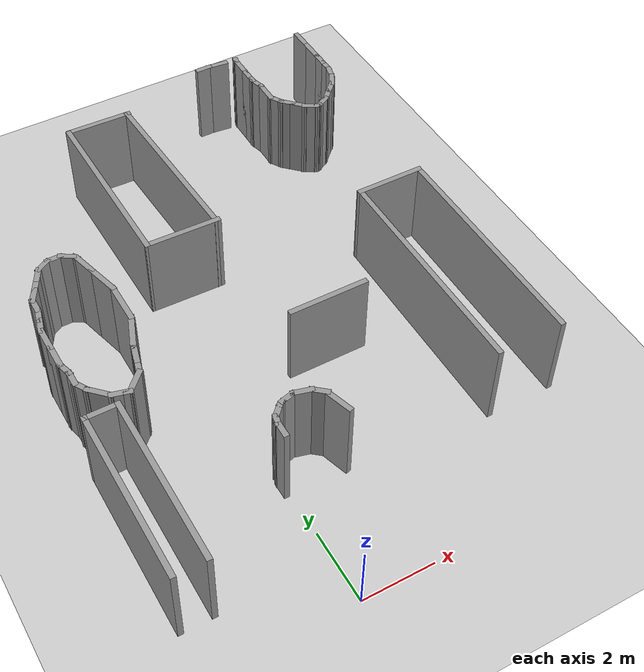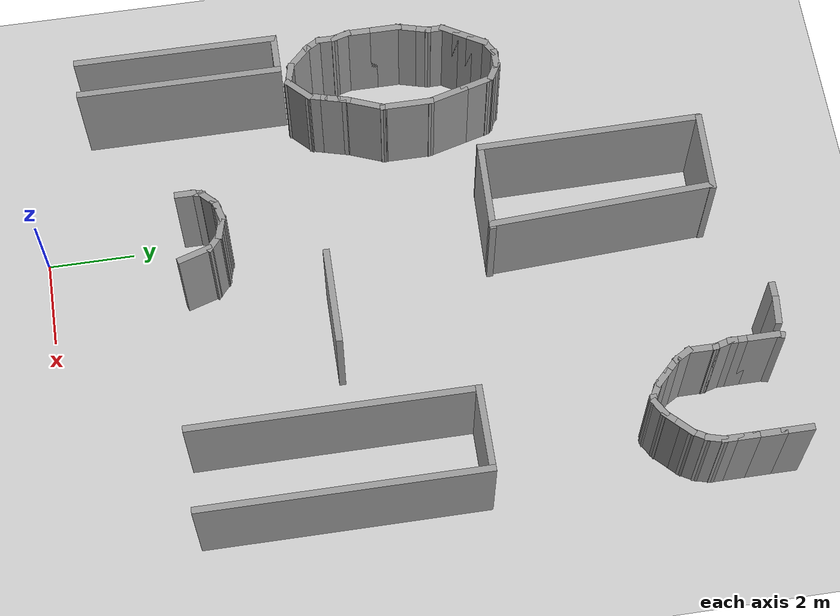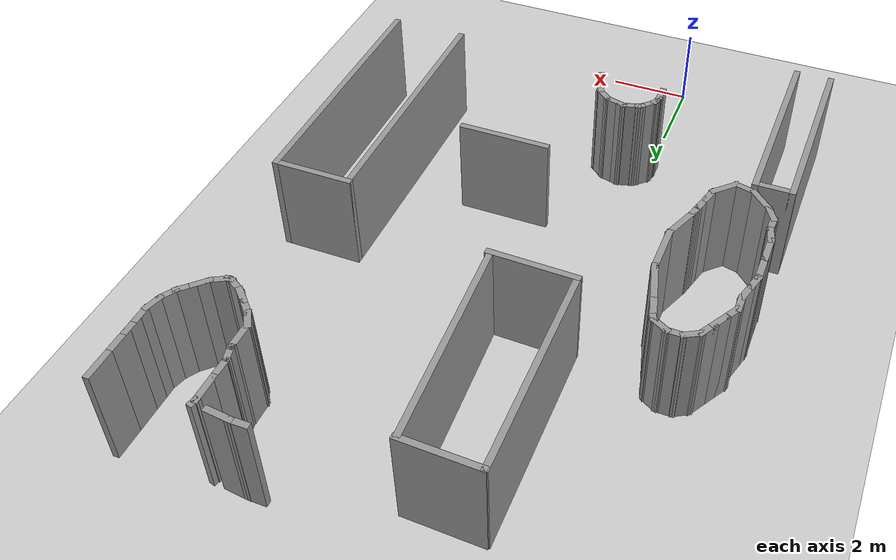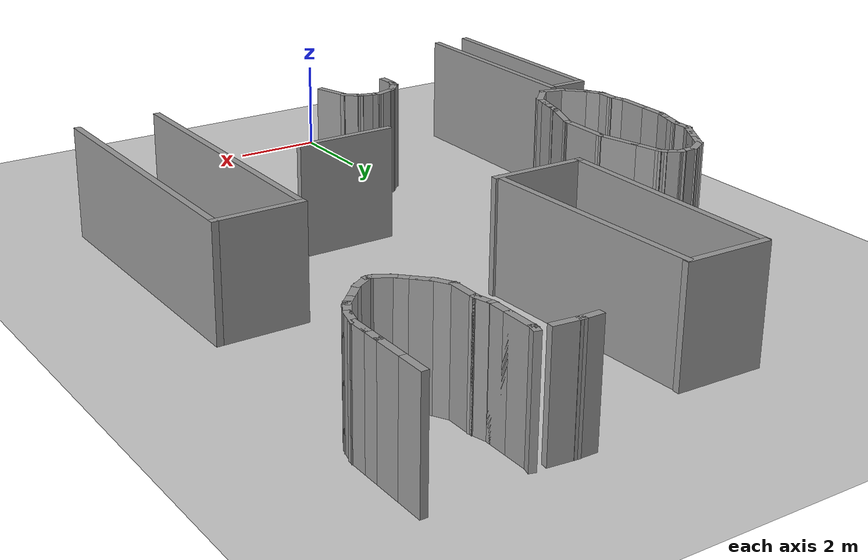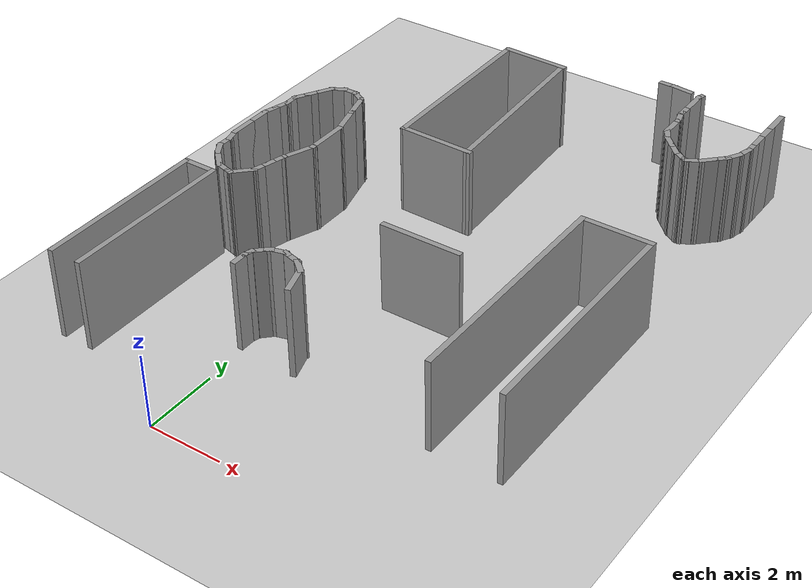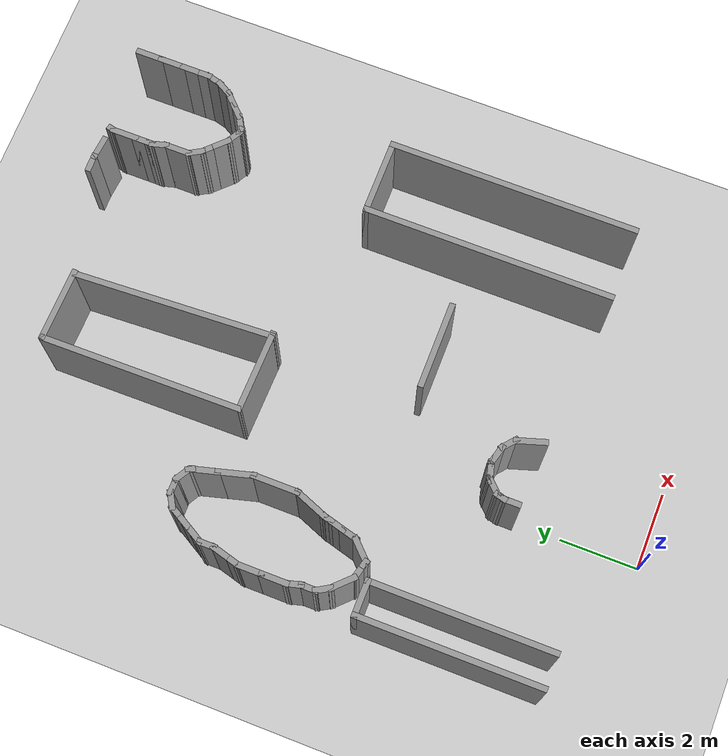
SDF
<sdf version="1.7">
 <world name="default">
  <model name="ground_plane">
   <static>1</static>
   <link name="link">
    <collision name="collision">
     <geometry><plane><normal>0 0 1</normal><size>100 100</size></plane></geometry>
     <surface><friction><ode><mu>100</mu><mu2>50</mu2></ode></friction></surface>
    </collision>
    <visual name="visual">
     <cast_shadows>0</cast_shadows>
     <geometry><plane><normal>0 0 1</normal><size>100 100</size></plane></geometry>
     <material>
      <script><uri>file://media/materials/scripts/gazebo.material</uri><name>Gazebo/Grey</name></script>
     </material>
    </visual>
   </link>
  </model>
  <model name="complex_wall">
   <pose>1.5 0.5 0 0 0 -1.5708</pose>
   <link name="Wall_120">
    <collision name="Wall_120_Collision">
     <geometry><box><size>1.91735 0.15 2.5</size></box></geometry>
     <pose>0 0 1.25 0 -0 0</pose>
    </collision>
    <visual name="Wall_120_Visual">
     <pose>0 0 1.25 0 -0 0</pose>
     <geometry><box><size>1.91735 0.15 2.5</size></box></geometry>
     <material>
      <script><uri>file://media/materials/scripts/gazebo.material</uri><name>Gazebo/Grey</name></script>
      <ambient>1 1 1 1</ambient>
     </material>
     <meta><layer>0</layer></meta>
    </visual>
    <pose>-14.791 -0.964174 0 0 -0 -1.59854</pose>
   </link>
   <link name="Wall_121">
    <collision name="Wall_121_Collision">
     <geometry><box><size>5.20588 0.15 2.5</size></box></geometry>
     <pose>0 0 1.25 0 -0 0</pose>
    </collision>
    <visual name="Wall_121_Visual">
     <pose>0 0 1.25 0 -0 0</pose>
     <geometry><box><size>5.20588 0.15 2.5</size></box></geometry>
     <material>
      <script><uri>file://media/materials/scripts/gazebo.material</uri><name>Gazebo/Grey</name></script>
      <ambient>1 1 1 1</ambient>
     </material>
     <meta><layer>0</layer></meta>
    </visual>
    <pose>-12.2631 -1.84751 0 0 -0 0.009695</pose>
   </link>
   <link name="Wall_122">
    <collision name="Wall_122_Collision">
     <geometry><box><size>2.16727 0.15 2.5</size></box></geometry>
     <pose>0 0 1.25 0 -0 0</pose>
    </collision>
    <visual name="Wall_122_Visual">
     <pose>0 0 1.25 0 -0 0</pose>
     <geometry><box><size>2.16727 0.15 2.5</size></box></geometry>
     <material>
      <script><uri>file://media/materials/scripts/gazebo.material</uri><name>Gazebo/Grey</name></script>
      <ambient>1 1 1 1</ambient>
     </material>
     <meta><layer>0</layer></meta>
    </visual>
    <pose>-9.7106 -0.814664 0 0 -0 1.54649</pose>
   </link>
   <link name="Wall_123">
    <collision name="Wall_123_Collision">
     <geometry><box><size>5.21205 0.15 2.5</size></box></geometry>
     <pose>0 0 1.25 0 -0 0</pose>
    </collision>
    <visual name="Wall_123_Visual">
     <pose>0 0 1.25 0 -0 0</pose>
     <geometry><box><size>5.21205 0.15 2.5</size></box></geometry>
     <material>
      <script><uri>file://media/materials/scripts/gazebo.material</uri><name>Gazebo/Grey</name></script>
      <ambient>1 1 1 1</ambient>
     </material>
     <meta><layer>0</layer></meta>
    </visual>
    <pose>-12.214 0.019653 0 0 -0 -3.09219</pose>
   </link>
   <link name="Wall_138">
    <collision name="Wall_138_Collision">
     <geometry><box><size>0.5 0.15 2.5</size></box></geometry>
     <pose>0 0 1.25 0 -0 0</pose>
    </collision>
    <visual name="Wall_138_Visual">
     <pose>0 0 1.25 0 -0 0</pose>
     <geometry><box><size>0.5 0.15 2.5</size></box></geometry>
     <material>
      <script><uri>file://media/materials/scripts/gazebo.material</uri><name>Gazebo/Grey</name></script>
      <ambient>1 1 1 1</ambient>
     </material>
     <meta><layer>0</layer></meta>
    </visual>
    <pose>-15.546 2.73089 0 0 -0 1.5708</pose>
   </link>
   <link name="Wall_139">
    <collision name="Wall_139_Collision">
     <geometry><box><size>0.661181 0.15 2.5</size></box></geometry>
     <pose>0 0 1.25 0 -0 0</pose>
    </collision>
    <visual name="Wall_139_Visual">
     <pose>0 0 1.25 0 -0 0</pose>
     <geometry><box><size>0.661181 0.15 2.5</size></box></geometry>
     <material>
      <script><uri>file://media/materials/scripts/gazebo.material</uri><name>Gazebo/Grey</name></script>
      <ambient>1 1 1 1</ambient>
     </material>
     <meta><layer>0</layer></meta>
    </visual>
    <pose>-15.5203 3.16018 0 0 -0 1.46988</pose>
   </link>
   <link name="Wall_156">
    <collision name="Wall_156_Collision">
     <geometry><box><size>0.25 0.15 2.5</size></box></geometry>
     <pose>0 0 1.25 0 -0 0</pose>
    </collision>
    <visual name="Wall_156_Visual">
     <pose>0 0 1.25 0 -0 0</pose>
     <geometry><box><size>0.25 0.15 2.5</size></box></geometry>
     <material>
      <script><uri>file://media/materials/scripts/gazebo.material</uri><name>Gazebo/Grey</name></script>
      <ambient>1 1 1 1</ambient>
     </material>
     <meta><layer>0</layer></meta>
    </visual>
    <pose>-15.4408 3.74372 0 0 -0 -0.261799</pose>
   </link>
   <link name="Wall_157">
    <collision name="Wall_157_Collision">
     <geometry><box><size>0.75 0.15 2.5</size></box></geometry>
     <pose>0 0 1.25 0 -0 0</pose>
    </collision>
    <visual name="Wall_157_Visual">
     <pose>0 0 1.25 0 -0 0</pose>
     <geometry><box><size>0.75 0.15 2.5</size></box></geometry>
     <material>
      <script><uri>file://media/materials/scripts/gazebo.material</uri><name>Gazebo/Grey</name></script>
      <ambient>1 1 1 1</ambient>
     </material>
     <meta><layer>0</layer></meta>
    </visual>
    <pose>-15.0926 3.73078 0 0 -0 0</pose>
   </link>
   <link name="Wall_158">
    <collision name="Wall_158_Collision">
     <geometry><box><size>0.5 0.15 2.5</size></box></geometry>
     <pose>0 0 1.25 0 -0 0</pose>
    </collision>
    <visual name="Wall_158_Visual">
     <pose>0 0 1.25 0 -0 0</pose>
     <geometry><box><size>0.5 0.15 2.5</size></box></geometry>
     <material>
      <script><uri>file://media/materials/scripts/gazebo.material</uri><name>Gazebo/Grey</name></script>
      <ambient>1 1 1 1</ambient>
     </material>
     <meta><layer>0</layer></meta>
    </visual>
    <pose>-14.6176 3.73078 0 0 -0 0</pose>
   </link>
   <link name="Wall_159">
    <collision name="Wall_159_Collision">
     <geometry><box><size>0.25 0.15 2.5</size></box></geometry>
     <pose>0 0 1.25 0 -0 0</pose>
    </collision>
    <visual name="Wall_159_Visual">
     <pose>0 0 1.25 0 -0 0</pose>
     <geometry><box><size>0.25 0.15 2.5</size></box></geometry>
     <material>
      <script><uri>file://media/materials/scripts/gazebo.material</uri><name>Gazebo/Grey</name></script>
      <ambient>1 1 1 1</ambient>
     </material>
     <meta><layer>0</layer></meta>
    </visual>
    <pose>-14.3926 3.73078 0 0 -0 0</pose>
   </link>
   <link name="Wall_160">
    <collision name="Wall_160_Collision">
     <geometry><box><size>0.5 0.15 2.5</size></box></geometry>
     <pose>0 0 1.25 0 -0 0</pose>
    </collision>
    <visual name="Wall_160_Visual">
     <pose>0 0 1.25 0 -0 0</pose>
     <geometry><box><size>0.5 0.15 2.5</size></box></geometry>
     <material>
      <script><uri>file://media/materials/scripts/gazebo.material</uri><name>Gazebo/Grey</name></script>
      <ambient>1 1 1 1</ambient>
     </material>
     <meta><layer>0</layer></meta>
    </visual>
    <pose>-14.1735 3.77607 0 0 -0 0.261799</pose>
   </link>
   <link name="Wall_161">
    <collision name="Wall_161_Collision">
     <geometry><box><size>0.15 0.15 2.5</size></box></geometry>
     <pose>0 0 1.25 0 -0 0</pose>
    </collision>
    <visual name="Wall_161_Visual">
     <pose>0 0 1.25 0 -0 0</pose>
     <geometry><box><size>0.15 0.15 2.5</size></box></geometry>
     <material>
      <script><uri>file://media/materials/scripts/gazebo.material</uri><name>Gazebo/Grey</name></script>
      <ambient>1 1 1 1</ambient>
     </material>
     <meta><layer>0</layer></meta>
    </visual>
    <pose>-14.0045 3.82137 0 0 -0 0</pose>
   </link>
   <link name="Wall_162">
    <collision name="Wall_162_Collision">
     <geometry><box><size>0.75 0.15 2.5</size></box></geometry>
     <pose>0 0 1.25 0 -0 0</pose>
    </collision>
    <visual name="Wall_162_Visual">
     <pose>0 0 1.25 0 -0 0</pose>
     <geometry><box><size>0.75 0.15 2.5</size></box></geometry>
     <material>
      <script><uri>file://media/materials/scripts/gazebo.material</uri><name>Gazebo/Grey</name></script>
      <ambient>1 1 1 1</ambient>
     </material>
     <meta><layer>0</layer></meta>
    </visual>
    <pose>-13.7045 3.82137 0 0 -0 0</pose>
   </link>
   <link name="Wall_163">
    <collision name="Wall_163_Collision">
     <geometry><box><size>0.5 0.15 2.5</size></box></geometry>
     <pose>0 0 1.25 0 -0 0</pose>
    </collision>
    <visual name="Wall_163_Visual">
     <pose>0 0 1.25 0 -0 0</pose>
     <geometry><box><size>0.5 0.15 2.5</size></box></geometry>
     <material>
      <script><uri>file://media/materials/scripts/gazebo.material</uri><name>Gazebo/Grey</name></script>
      <ambient>1 1 1 1</ambient>
     </material>
     <meta><layer>0</layer></meta>
    </visual>
    <pose>-13.2529 3.90887 0 0 -0 0.523599</pose>
   </link>
   <link name="Wall_164">
    <collision name="Wall_164_Collision">
     <geometry><box><size>0.5 0.15 2.5</size></box></geometry>
     <pose>0 0 1.25 0 -0 0</pose>
    </collision>
    <visual name="Wall_164_Visual">
     <pose>0 0 1.25 0 -0 0</pose>
     <geometry><box><size>0.5 0.15 2.5</size></box></geometry>
     <material>
      <script><uri>file://media/materials/scripts/gazebo.material</uri><name>Gazebo/Grey</name></script>
      <ambient>1 1 1 1</ambient>
     </material>
     <meta><layer>0</layer></meta>
    </visual>
    <pose>-12.9776 4.12011 0 0 -0 0.785398</pose>
   </link>
   <link name="Wall_165">
    <collision name="Wall_165_Collision">
     <geometry><box><size>0.5 0.15 2.5</size></box></geometry>
     <pose>0 0 1.25 0 -0 0</pose>
    </collision>
    <visual name="Wall_165_Visual">
     <pose>0 0 1.25 0 -0 0</pose>
     <geometry><box><size>0.5 0.15 2.5</size></box></geometry>
     <material>
      <script><uri>file://media/materials/scripts/gazebo.material</uri><name>Gazebo/Grey</name></script>
      <ambient>1 1 1 1</ambient>
     </material>
     <meta><layer>0</layer></meta>
    </visual>
    <pose>-12.7301 4.3676 0 0 -0 0.785398</pose>
   </link>
   <link name="Wall_166">
    <collision name="Wall_166_Collision">
     <geometry><box><size>0.5 0.15 2.5</size></box></geometry>
     <pose>0 0 1.25 0 -0 0</pose>
    </collision>
    <visual name="Wall_166_Visual">
     <pose>0 0 1.25 0 -0 0</pose>
     <geometry><box><size>0.5 0.15 2.5</size></box></geometry>
     <material>
      <script><uri>file://media/materials/scripts/gazebo.material</uri><name>Gazebo/Grey</name></script>
      <ambient>1 1 1 1</ambient>
     </material>
     <meta><layer>0</layer></meta>
    </visual>
    <pose>-12.5189 4.6429 0 0 -0 1.0472</pose>
   </link>
   <link name="Wall_167">
    <collision name="Wall_167_Collision">
     <geometry><box><size>0.25 0.15 2.5</size></box></geometry>
     <pose>0 0 1.25 0 -0 0</pose>
    </collision>
    <visual name="Wall_167_Visual">
     <pose>0 0 1.25 0 -0 0</pose>
     <geometry><box><size>0.25 0.15 2.5</size></box></geometry>
     <material>
      <script><uri>file://media/materials/scripts/gazebo.material</uri><name>Gazebo/Grey</name></script>
      <ambient>1 1 1 1</ambient>
     </material>
     <meta><layer>0</layer></meta>
    </visual>
    <pose>-12.4314 4.84445 0 0 -0 1.5708</pose>
   </link>
   <link name="Wall_168">
    <collision name="Wall_168_Collision">
     <geometry><box><size>0.5 0.15 2.5</size></box></geometry>
     <pose>0 0 1.25 0 -0 0</pose>
    </collision>
    <visual name="Wall_168_Visual">
     <pose>0 0 1.25 0 -0 0</pose>
     <geometry><box><size>0.5 0.15 2.5</size></box></geometry>
     <material>
      <script><uri>file://media/materials/scripts/gazebo.material</uri><name>Gazebo/Grey</name></script>
      <ambient>1 1 1 1</ambient>
     </material>
     <meta><layer>0</layer></meta>
    </visual>
    <pose>-12.5189 5.04601 0 0 -0 2.0944</pose>
   </link>
   <link name="Wall_169">
    <collision name="Wall_169_Collision">
     <geometry><box><size>0.5 0.15 2.5</size></box></geometry>
     <pose>0 0 1.25 0 -0 0</pose>
    </collision>
    <visual name="Wall_169_Visual">
     <pose>0 0 1.25 0 -0 0</pose>
     <geometry><box><size>0.5 0.15 2.5</size></box></geometry>
     <material>
      <script><uri>file://media/materials/scripts/gazebo.material</uri><name>Gazebo/Grey</name></script>
      <ambient>1 1 1 1</ambient>
     </material>
     <meta><layer>0</layer></meta>
    </visual>
    <pose>-12.7301 5.3213 0 0 -0 2.35619</pose>
   </link>
   <link name="Wall_170">
    <collision name="Wall_170_Collision">
     <geometry><box><size>0.5 0.15 2.5</size></box></geometry>
     <pose>0 0 1.25 0 -0 0</pose>
    </collision>
    <visual name="Wall_170_Visual">
     <pose>0 0 1.25 0 -0 0</pose>
     <geometry><box><size>0.5 0.15 2.5</size></box></geometry>
     <material>
      <script><uri>file://media/materials/scripts/gazebo.material</uri><name>Gazebo/Grey</name></script>
      <ambient>1 1 1 1</ambient>
     </material>
     <meta><layer>0</layer></meta>
    </visual>
    <pose>-12.9776 5.56879 0 0 -0 2.35619</pose>
   </link>
   <link name="Wall_171">
    <collision name="Wall_171_Collision">
     <geometry><box><size>0.5 0.15 2.5</size></box></geometry>
     <pose>0 0 1.25 0 -0 0</pose>
    </collision>
    <visual name="Wall_171_Visual">
     <pose>0 0 1.25 0 -0 0</pose>
     <geometry><box><size>0.5 0.15 2.5</size></box></geometry>
     <material>
      <script><uri>file://media/materials/scripts/gazebo.material</uri><name>Gazebo/Grey</name></script>
      <ambient>1 1 1 1</ambient>
     </material>
     <meta><layer>0</layer></meta>
    </visual>
    <pose>-13.2529 5.78003 0 0 -0 2.61799</pose>
   </link>
   <link name="Wall_172">
    <collision name="Wall_172_Collision">
     <geometry><box><size>0.5 0.15 2.5</size></box></geometry>
     <pose>0 0 1.25 0 -0 0</pose>
    </collision>
    <visual name="Wall_172_Visual">
     <pose>0 0 1.25 0 -0 0</pose>
     <geometry><box><size>0.5 0.15 2.5</size></box></geometry>
     <material>
      <script><uri>file://media/materials/scripts/gazebo.material</uri><name>Gazebo/Grey</name></script>
      <ambient>1 1 1 1</ambient>
     </material>
     <meta><layer>0</layer></meta>
    </visual>
    <pose>-13.5735 5.91283 0 0 -0 2.87979</pose>
   </link>
   <link name="Wall_173">
    <collision name="Wall_173_Collision">
     <geometry><box><size>0.5 0.15 2.5</size></box></geometry>
     <pose>0 0 1.25 0 -0 0</pose>
    </collision>
    <visual name="Wall_173_Visual">
     <pose>0 0 1.25 0 -0 0</pose>
     <geometry><box><size>0.5 0.15 2.5</size></box></geometry>
     <material>
      <script><uri>file://media/materials/scripts/gazebo.material</uri><name>Gazebo/Grey</name></script>
      <ambient>1 1 1 1</ambient>
     </material>
     <meta><layer>0</layer></meta>
    </visual>
    <pose>-13.9176 5.95812 0 0 -0 3.14159</pose>
   </link>
   <link name="Wall_174">
    <collision name="Wall_174_Collision">
     <geometry><box><size>0.5 0.15 2.5</size></box></geometry>
     <pose>0 0 1.25 0 -0 0</pose>
    </collision>
    <visual name="Wall_174_Visual">
     <pose>0 0 1.25 0 -0 0</pose>
     <geometry><box><size>0.5 0.15 2.5</size></box></geometry>
     <material>
      <script><uri>file://media/materials/scripts/gazebo.material</uri><name>Gazebo/Grey</name></script>
      <ambient>1 1 1 1</ambient>
     </material>
     <meta><layer>0</layer></meta>
    </visual>
    <pose>-14.2676 5.95812 0 0 -0 3.14159</pose>
   </link>
   <link name="Wall_175">
    <collision name="Wall_175_Collision">
     <geometry><box><size>0.75 0.15 2.5</size></box></geometry>
     <pose>0 0 1.25 0 -0 0</pose>
    </collision>
    <visual name="Wall_175_Visual">
     <pose>0 0 1.25 0 -0 0</pose>
     <geometry><box><size>0.75 0.15 2.5</size></box></geometry>
     <material>
      <script><uri>file://media/materials/scripts/gazebo.material</uri><name>Gazebo/Grey</name></script>
      <ambient>1 1 1 1</ambient>
     </material>
     <meta><layer>0</layer></meta>
    </visual>
    <pose>-14.7426 5.95812 0 0 -0 3.14159</pose>
   </link>
   <link name="Wall_176">
    <collision name="Wall_176_Collision">
     <geometry><box><size>0.75 0.15 2.5</size></box></geometry>
     <pose>0 0 1.25 0 -0 0</pose>
    </collision>
    <visual name="Wall_176_Visual">
     <pose>0 0 1.25 0 -0 0</pose>
     <geometry><box><size>0.75 0.15 2.5</size></box></geometry>
     <material>
      <script><uri>file://media/materials/scripts/gazebo.material</uri><name>Gazebo/Grey</name></script>
      <ambient>1 1 1 1</ambient>
     </material>
     <meta><layer>0</layer></meta>
    </visual>
    <pose>-15.3426 5.95812 0 0 -0 3.14159</pose>
   </link>
   <link name="Wall_187">
    <collision name="Wall_187_Collision">
     <geometry><box><size>2 0.15 2.5</size></box></geometry>
     <pose>0 0 1.25 0 -0 0</pose>
    </collision>
    <visual name="Wall_187_Visual">
     <pose>0 0 1.25 0 -0 0</pose>
     <geometry><box><size>2 0.15 2.5</size></box></geometry>
     <material>
      <script><uri>file://media/materials/scripts/gazebo.material</uri><name>Gazebo/Grey</name></script>
      <ambient>1 1 1 1</ambient>
     </material>
     <meta><layer>0</layer></meta>
    </visual>
    <pose>-8.7492 4.94555 0 0 -0 -1.5708</pose>
   </link>
   <link name="Wall_188">
    <collision name="Wall_188_Collision">
     <geometry><box><size>6.5 0.15 2.5</size></box></geometry>
     <pose>0 0 1.25 0 -0 0</pose>
    </collision>
    <visual name="Wall_188_Visual">
     <pose>0 0 1.25 0 -0 0</pose>
     <geometry><box><size>6.5 0.15 2.5</size></box></geometry>
     <material>
      <script><uri>file://media/materials/scripts/gazebo.material</uri><name>Gazebo/Grey</name></script>
      <ambient>1 1 1 1</ambient>
     </material>
     <meta><layer>0</layer></meta>
    </visual>
    <pose>-5.5742 4.02055 0 0 -0 0</pose>
   </link>
   <link name="Wall_190">
    <collision name="Wall_190_Collision">
     <geometry><box><size>6.5 0.15 2.5</size></box></geometry>
     <pose>0 0 1.25 0 -0 0</pose>
    </collision>
    <visual name="Wall_190_Visual">
     <pose>0 0 1.25 0 -0 0</pose>
     <geometry><box><size>6.5 0.15 2.5</size></box></geometry>
     <material>
      <script><uri>file://media/materials/scripts/gazebo.material</uri><name>Gazebo/Grey</name></script>
      <ambient>1 1 1 1</ambient>
     </material>
     <meta><layer>0</layer></meta>
    </visual>
    <pose>-5.5742 5.87056 0 0 -0 3.14159</pose>
   </link>
   <link name="Wall_192">
    <collision name="Wall_192_Collision">
     <geometry><box><size>2.25149 0.15 2.5</size></box></geometry>
     <pose>0 0 1.25 0 -0 0</pose>
    </collision>
    <visual name="Wall_192_Visual">
     <pose>0 0 1.25 0 -0 0</pose>
     <geometry><box><size>2.25149 0.15 2.5</size></box></geometry>
     <material>
      <script><uri>file://media/materials/scripts/gazebo.material</uri><name>Gazebo/Grey</name></script>
      <ambient>1 1 1 1</ambient>
     </material>
     <meta><layer>0</layer></meta>
    </visual>
    <pose>-5.91739 1.3541 0 0 -0 -1.5708</pose>
   </link>
   <link name="Wall_197">
    <collision name="Wall_197_Collision">
     <geometry><box><size>0.835395 0.15 2.5</size></box></geometry>
     <pose>0 0 1.25 0 -0 0</pose>
    </collision>
    <visual name="Wall_197_Visual">
     <pose>0 0 1.25 0 -0 0</pose>
     <geometry><box><size>0.835395 0.15 2.5</size></box></geometry>
     <material>
      <script><uri>file://media/materials/scripts/gazebo.material</uri><name>Gazebo/Grey</name></script>
      <ambient>1 1 1 1</ambient>
     </material>
     <meta><layer>0</layer></meta>
    </visual>
    <pose>-3.01908 -0.08228 0 0 -0 -2.8381</pose>
   </link>
   <link name="Wall_198">
    <collision name="Wall_198_Collision">
     <geometry><box><size>0.524368 0.15 2.5</size></box></geometry>
     <pose>0 0 1.25 0 -0 0</pose>
    </collision>
    <visual name="Wall_198_Visual">
     <pose>0 0 1.25 0 -0 0</pose>
     <geometry><box><size>0.524368 0.15 2.5</size></box></geometry>
     <material>
      <script><uri>file://media/materials/scripts/gazebo.material</uri><name>Gazebo/Grey</name></script>
      <ambient>1 1 1 1</ambient>
     </material>
     <meta><layer>0</layer></meta>
    </visual>
    <pose>-3.47894 -0.315381 0 0 -0 -2.27135</pose>
   </link>
   <link name="Wall_199">
    <collision name="Wall_199_Collision">
     <geometry><box><size>0.5 0.15 2.5</size></box></geometry>
     <pose>0 0 1.25 0 -0 0</pose>
    </collision>
    <visual name="Wall_199_Visual">
     <pose>0 0 1.25 0 -0 0</pose>
     <geometry><box><size>0.5 0.15 2.5</size></box></geometry>
     <material>
      <script><uri>file://media/materials/scripts/gazebo.material</uri><name>Gazebo/Grey</name></script>
      <ambient>1 1 1 1</ambient>
     </material>
     <meta><layer>0</layer></meta>
    </visual>
    <pose>-3.6449 -0.627518 0 0 -0 -1.8326</pose>
   </link>
   <link name="Wall_200">
    <collision name="Wall_200_Collision">
     <geometry><box><size>0.25 0.15 2.5</size></box></geometry>
     <pose>0 0 1.25 0 -0 0</pose>
    </collision>
    <visual name="Wall_200_Visual">
     <pose>0 0 1.25 0 -0 0</pose>
     <geometry><box><size>0.25 0.15 2.5</size></box></geometry>
     <material>
      <script><uri>file://media/materials/scripts/gazebo.material</uri><name>Gazebo/Grey</name></script>
      <ambient>1 1 1 1</ambient>
     </material>
     <meta><layer>0</layer></meta>
    </visual>
    <pose>-3.70314 -0.844851 0 0 -0 -1.8326</pose>
   </link>
   <link name="Wall_201">
    <collision name="Wall_201_Collision">
     <geometry><box><size>0.5 0.15 2.5</size></box></geometry>
     <pose>0 0 1.25 0 -0 0</pose>
    </collision>
    <visual name="Wall_201_Visual">
     <pose>0 0 1.25 0 -0 0</pose>
     <geometry><box><size>0.5 0.15 2.5</size></box></geometry>
     <material>
      <script><uri>file://media/materials/scripts/gazebo.material</uri><name>Gazebo/Grey</name></script>
      <ambient>1 1 1 1</ambient>
     </material>
     <meta><layer>0</layer></meta>
    </visual>
    <pose>-3.67078 -1.06218 0 0 -0 -1.309</pose>
   </link>
   <link name="Wall_202">
    <collision name="Wall_202_Collision">
     <geometry><box><size>0.25 0.15 2.5</size></box></geometry>
     <pose>0 0 1.25 0 -0 0</pose>
    </collision>
    <visual name="Wall_202_Visual">
     <pose>0 0 1.25 0 -0 0</pose>
     <geometry><box><size>0.25 0.15 2.5</size></box></geometry>
     <material>
      <script><uri>file://media/materials/scripts/gazebo.material</uri><name>Gazebo/Grey</name></script>
      <ambient>1 1 1 1</ambient>
     </material>
     <meta><layer>0</layer></meta>
    </visual>
    <pose>-3.60049 -1.27452 0 0 -0 -1.0472</pose>
   </link>
   <link name="Wall_203">
    <collision name="Wall_203_Collision">
     <geometry><box><size>0.5 0.15 2.5</size></box></geometry>
     <pose>0 0 1.25 0 -0 0</pose>
    </collision>
    <visual name="Wall_203_Visual">
     <pose>0 0 1.25 0 -0 0</pose>
     <geometry><box><size>0.5 0.15 2.5</size></box></geometry>
     <material>
      <script><uri>file://media/materials/scripts/gazebo.material</uri><name>Gazebo/Grey</name></script>
      <ambient>1 1 1 1</ambient>
     </material>
     <meta><layer>0</layer></meta>
    </visual>
    <pose>-3.45175 -1.44157 0 0 -0 -0.785398</pose>
   </link>
   <link name="Wall_204">
    <collision name="Wall_204_Collision">
     <geometry><box><size>0.25 0.15 2.5</size></box></geometry>
     <pose>0 0 1.25 0 -0 0</pose>
    </collision>
    <visual name="Wall_204_Visual">
     <pose>0 0 1.25 0 -0 0</pose>
     <geometry><box><size>0.25 0.15 2.5</size></box></geometry>
     <material>
      <script><uri>file://media/materials/scripts/gazebo.material</uri><name>Gazebo/Grey</name></script>
      <ambient>1 1 1 1</ambient>
     </material>
     <meta><layer>0</layer></meta>
    </visual>
    <pose>-3.27971 -1.57825 0 0 -0 -0.261799</pose>
   </link>
   <link name="Wall_205">
    <collision name="Wall_205_Collision">
     <geometry><box><size>0.25 0.15 2.5</size></box></geometry>
     <pose>0 0 1.25 0 -0 0</pose>
    </collision>
    <visual name="Wall_205_Visual">
     <pose>0 0 1.25 0 -0 0</pose>
     <geometry><box><size>0.25 0.15 2.5</size></box></geometry>
     <material>
      <script><uri>file://media/materials/scripts/gazebo.material</uri><name>Gazebo/Grey</name></script>
      <ambient>1 1 1 1</ambient>
     </material>
     <meta><layer>0</layer></meta>
    </visual>
    <pose>-3.18311 -1.60413 0 0 -0 -0.261799</pose>
   </link>
   <link name="Wall_206">
    <collision name="Wall_206_Collision">
     <geometry><box><size>0.5 0.15 2.5</size></box></geometry>
     <pose>0 0 1.25 0 -0 0</pose>
    </collision>
    <visual name="Wall_206_Visual">
     <pose>0 0 1.25 0 -0 0</pose>
     <geometry><box><size>0.5 0.15 2.5</size></box></geometry>
     <material>
      <script><uri>file://media/materials/scripts/gazebo.material</uri><name>Gazebo/Grey</name></script>
      <ambient>1 1 1 1</ambient>
     </material>
     <meta><layer>0</layer></meta>
    </visual>
    <pose>-2.95982 -1.61708 0 0 -0 0</pose>
   </link>
   <link name="Wall_220">
    <collision name="Wall_220_Collision">
     <geometry><box><size>1.25 0.15 2.5</size></box></geometry>
     <pose>0 0 1.25 0 -0 0</pose>
    </collision>
    <visual name="Wall_220_Visual">
     <pose>0 0 1.25 0 -0 0</pose>
     <geometry><box><size>1.25 0.15 2.5</size></box></geometry>
     <material>
      <script><uri>file://media/materials/scripts/gazebo.material</uri><name>Gazebo/Grey</name></script>
      <ambient>1 1 1 1</ambient>
     </material>
     <meta><layer>0</layer></meta>
    </visual>
    <pose>-8.24356 -3.19459 0 0 -0 3.14159</pose>
   </link>
   <link name="Wall_221">
    <collision name="Wall_221_Collision">
     <geometry><box><size>1 0.15 2.5</size></box></geometry>
     <pose>0 0 1.25 0 -0 0</pose>
    </collision>
    <visual name="Wall_221_Visual">
     <pose>0 0 1.25 0 -0 0</pose>
     <geometry><box><size>1 0.15 2.5</size></box></geometry>
     <material>
      <script><uri>file://media/materials/scripts/gazebo.material</uri><name>Gazebo/Grey</name></script>
      <ambient>1 1 1 1</ambient>
     </material>
     <meta><layer>0</layer></meta>
    </visual>
    <pose>-9.20407 -3.30458 0 0 -0 -2.87979</pose>
   </link>
   <link name="Wall_222">
    <collision name="Wall_222_Collision">
     <geometry><box><size>0.75 0.15 2.5</size></box></geometry>
     <pose>0 0 1.25 0 -0 0</pose>
    </collision>
    <visual name="Wall_222_Visual">
     <pose>0 0 1.25 0 -0 0</pose>
     <geometry><box><size>0.75 0.15 2.5</size></box></geometry>
     <material>
      <script><uri>file://media/materials/scripts/gazebo.material</uri><name>Gazebo/Grey</name></script>
      <ambient>1 1 1 1</ambient>
     </material>
     <meta><layer>0</layer></meta>
    </visual>
    <pose>-9.90437 -3.49223 0 0 -0 -2.87979</pose>
   </link>
   <link name="Wall_223">
    <collision name="Wall_223_Collision">
     <geometry><box><size>0.25 0.15 2.5</size></box></geometry>
     <pose>0 0 1.25 0 -0 0</pose>
    </collision>
    <visual name="Wall_223_Visual">
     <pose>0 0 1.25 0 -0 0</pose>
     <geometry><box><size>0.25 0.15 2.5</size></box></geometry>
     <material>
      <script><uri>file://media/materials/scripts/gazebo.material</uri><name>Gazebo/Grey</name></script>
      <ambient>1 1 1 1</ambient>
     </material>
     <meta><layer>0</layer></meta>
    </visual>
    <pose>-10.2375 -3.59487 0 0 -0 -2.61799</pose>
   </link>
   <link name="Wall_224">
    <collision name="Wall_224_Collision">
     <geometry><box><size>0.5 0.15 2.5</size></box></geometry>
     <pose>0 0 1.25 0 -0 0</pose>
    </collision>
    <visual name="Wall_224_Visual">
     <pose>0 0 1.25 0 -0 0</pose>
     <geometry><box><size>0.5 0.15 2.5</size></box></geometry>
     <material>
      <script><uri>file://media/materials/scripts/gazebo.material</uri><name>Gazebo/Grey</name></script>
      <ambient>1 1 1 1</ambient>
     </material>
     <meta><layer>0</layer></meta>
    </visual>
    <pose>-10.3683 -3.77143 0 0 -0 -2.0944</pose>
   </link>
   <link name="Wall_225">
    <collision name="Wall_225_Collision">
     <geometry><box><size>0.15 0.15 2.5</size></box></geometry>
     <pose>0 0 1.25 0 -0 0</pose>
    </collision>
    <visual name="Wall_225_Visual">
     <pose>0 0 1.25 0 -0 0</pose>
     <geometry><box><size>0.15 0.15 2.5</size></box></geometry>
     <material>
      <script><uri>file://media/materials/scripts/gazebo.material</uri><name>Gazebo/Grey</name></script>
      <ambient>1 1 1 1</ambient>
     </material>
     <meta><layer>0</layer></meta>
    </visual>
    <pose>-10.4558 -3.92298 0 0 -0 0</pose>
   </link>
   <link name="Wall_226">
    <collision name="Wall_226_Collision">
     <geometry><box><size>0.5 0.15 2.5</size></box></geometry>
     <pose>0 0 1.25 0 -0 0</pose>
    </collision>
    <visual name="Wall_226_Visual">
     <pose>0 0 1.25 0 -0 0</pose>
     <geometry><box><size>0.5 0.15 2.5</size></box></geometry>
     <material>
      <script><uri>file://media/materials/scripts/gazebo.material</uri><name>Gazebo/Grey</name></script>
      <ambient>1 1 1 1</ambient>
     </material>
     <meta><layer>0</layer></meta>
    </visual>
    <pose>-10.4558 -4.09798 0 0 -0 -1.5708</pose>
   </link>
   <link name="Wall_227">
    <collision name="Wall_227_Collision">
     <geometry><box><size>0.5 0.15 2.5</size></box></geometry>
     <pose>0 0 1.25 0 -0 0</pose>
    </collision>
    <visual name="Wall_227_Visual">
     <pose>0 0 1.25 0 -0 0</pose>
     <geometry><box><size>0.5 0.15 2.5</size></box></geometry>
     <material>
      <script><uri>file://media/materials/scripts/gazebo.material</uri><name>Gazebo/Grey</name></script>
      <ambient>1 1 1 1</ambient>
     </material>
     <meta><layer>0</layer></meta>
    </visual>
    <pose>-10.3683 -4.42454 0 0 -0 -1.0472</pose>
   </link>
   <link name="Wall_228">
    <collision name="Wall_228_Collision">
     <geometry><box><size>0.5 0.15 2.5</size></box></geometry>
     <pose>0 0 1.25 0 -0 0</pose>
    </collision>
    <visual name="Wall_228_Visual">
     <pose>0 0 1.25 0 -0 0</pose>
     <geometry><box><size>0.5 0.15 2.5</size></box></geometry>
     <material>
      <script><uri>file://media/materials/scripts/gazebo.material</uri><name>Gazebo/Grey</name></script>
      <ambient>1 1 1 1</ambient>
     </material>
     <meta><layer>0</layer></meta>
    </visual>
    <pose>-10.1292 -4.66359 0 0 -0 -0.523599</pose>
   </link>
   <link name="Wall_229">
    <collision name="Wall_229_Collision">
     <geometry><box><size>0.5 0.15 2.5</size></box></geometry>
     <pose>0 0 1.25 0 -0 0</pose>
    </collision>
    <visual name="Wall_229_Visual">
     <pose>0 0 1.25 0 -0 0</pose>
     <geometry><box><size>0.5 0.15 2.5</size></box></geometry>
     <material>
      <script><uri>file://media/materials/scripts/gazebo.material</uri><name>Gazebo/Grey</name></script>
      <ambient>1 1 1 1</ambient>
     </material>
     <meta><layer>0</layer></meta>
    </visual>
    <pose>-9.82609 -4.83859 0 0 -0 -0.523599</pose>
   </link>
   <link name="Wall_230">
    <collision name="Wall_230_Collision">
     <geometry><box><size>0.5 0.15 2.5</size></box></geometry>
     <pose>0 0 1.25 0 -0 0</pose>
    </collision>
    <visual name="Wall_230_Visual">
     <pose>0 0 1.25 0 -0 0</pose>
     <geometry><box><size>0.5 0.15 2.5</size></box></geometry>
     <material>
      <script><uri>file://media/materials/scripts/gazebo.material</uri><name>Gazebo/Grey</name></script>
      <ambient>1 1 1 1</ambient>
     </material>
     <meta><layer>0</layer></meta>
    </visual>
    <pose>-9.52298 -5.01359 0 0 -0 -0.523599</pose>
   </link>
   <link name="Wall_231">
    <collision name="Wall_231_Collision">
     <geometry><box><size>0.5 0.15 2.5</size></box></geometry>
     <pose>0 0 1.25 0 -0 0</pose>
    </collision>
    <visual name="Wall_231_Visual">
     <pose>0 0 1.25 0 -0 0</pose>
     <geometry><box><size>0.5 0.15 2.5</size></box></geometry>
     <material>
      <script><uri>file://media/materials/scripts/gazebo.material</uri><name>Gazebo/Grey</name></script>
      <ambient>1 1 1 1</ambient>
     </material>
     <meta><layer>0</layer></meta>
    </visual>
    <pose>-9.19642 -5.10109 0 0 -0 0</pose>
   </link>
   <link name="Wall_232">
    <collision name="Wall_232_Collision">
     <geometry><box><size>0.5 0.15 2.5</size></box></geometry>
     <pose>0 0 1.25 0 -0 0</pose>
    </collision>
    <visual name="Wall_232_Visual">
     <pose>0 0 1.25 0 -0 0</pose>
     <geometry><box><size>0.5 0.15 2.5</size></box></geometry>
     <material>
      <script><uri>file://media/materials/scripts/gazebo.material</uri><name>Gazebo/Grey</name></script>
      <ambient>1 1 1 1</ambient>
     </material>
     <meta><layer>0</layer></meta>
    </visual>
    <pose>-8.85239 -5.14639 0 0 -0 -0.261799</pose>
   </link>
   <link name="Wall_233">
    <collision name="Wall_233_Collision">
     <geometry><box><size>0.5 0.15 2.5</size></box></geometry>
     <pose>0 0 1.25 0 -0 0</pose>
    </collision>
    <visual name="Wall_233_Visual">
     <pose>0 0 1.25 0 -0 0</pose>
     <geometry><box><size>0.5 0.15 2.5</size></box></geometry>
     <material>
      <script><uri>file://media/materials/scripts/gazebo.material</uri><name>Gazebo/Grey</name></script>
      <ambient>1 1 1 1</ambient>
     </material>
     <meta><layer>0</layer></meta>
    </visual>
    <pose>-8.51431 -5.23697 0 0 -0 -0.261799</pose>
   </link>
   <link name="Wall_234">
    <collision name="Wall_234_Collision">
     <geometry><box><size>0.75 0.15 2.5</size></box></geometry>
     <pose>0 0 1.25 0 -0 0</pose>
    </collision>
    <visual name="Wall_234_Visual">
     <pose>0 0 1.25 0 -0 0</pose>
     <geometry><box><size>0.75 0.15 2.5</size></box></geometry>
     <material>
      <script><uri>file://media/materials/scripts/gazebo.material</uri><name>Gazebo/Grey</name></script>
      <ambient>1 1 1 1</ambient>
     </material>
     <meta><layer>0</layer></meta>
    </visual>
    <pose>-8.04528 -5.28226 0 0 -0 0</pose>
   </link>
   <link name="Wall_235">
    <collision name="Wall_235_Collision">
     <geometry><box><size>0.75 0.15 2.5</size></box></geometry>
     <pose>0 0 1.25 0 -0 0</pose>
    </collision>
    <visual name="Wall_235_Visual">
     <pose>0 0 1.25 0 -0 0</pose>
     <geometry><box><size>0.75 0.15 2.5</size></box></geometry>
     <material>
      <script><uri>file://media/materials/scripts/gazebo.material</uri><name>Gazebo/Grey</name></script>
      <ambient>1 1 1 1</ambient>
     </material>
     <meta><layer>0</layer></meta>
    </visual>
    <pose>-7.44528 -5.28226 0 0 -0 0</pose>
   </link>
   <link name="Wall_236">
    <collision name="Wall_236_Collision">
     <geometry><box><size>0.5 0.15 2.5</size></box></geometry>
     <pose>0 0 1.25 0 -0 0</pose>
    </collision>
    <visual name="Wall_236_Visual">
     <pose>0 0 1.25 0 -0 0</pose>
     <geometry><box><size>0.5 0.15 2.5</size></box></geometry>
     <material>
      <script><uri>file://media/materials/scripts/gazebo.material</uri><name>Gazebo/Grey</name></script>
      <ambient>1 1 1 1</ambient>
     </material>
     <meta><layer>0</layer></meta>
    </visual>
    <pose>-6.97624 -5.23697 0 0 -0 0.261799</pose>
   </link>
   <link name="Wall_237">
    <collision name="Wall_237_Collision">
     <geometry><box><size>0.5 0.15 2.5</size></box></geometry>
     <pose>0 0 1.25 0 -0 0</pose>
    </collision>
    <visual name="Wall_237_Visual">
     <pose>0 0 1.25 0 -0 0</pose>
     <geometry><box><size>0.5 0.15 2.5</size></box></geometry>
     <material>
      <script><uri>file://media/materials/scripts/gazebo.material</uri><name>Gazebo/Grey</name></script>
      <ambient>1 1 1 1</ambient>
     </material>
     <meta><layer>0</layer></meta>
    </visual>
    <pose>-6.6322 -5.19168 0 0 -0 0</pose>
   </link>
   <link name="Wall_238">
    <collision name="Wall_238_Collision">
     <geometry><box><size>0.5 0.15 2.5</size></box></geometry>
     <pose>0 0 1.25 0 -0 0</pose>
    </collision>
    <visual name="Wall_238_Visual">
     <pose>0 0 1.25 0 -0 0</pose>
     <geometry><box><size>0.5 0.15 2.5</size></box></geometry>
     <material>
      <script><uri>file://media/materials/scripts/gazebo.material</uri><name>Gazebo/Grey</name></script>
      <ambient>1 1 1 1</ambient>
     </material>
     <meta><layer>0</layer></meta>
    </visual>
    <pose>-6.30565 -5.10418 0 0 -0 0.523599</pose>
   </link>
   <link name="Wall_239">
    <collision name="Wall_239_Collision">
     <geometry><box><size>0.75 0.15 2.5</size></box></geometry>
     <pose>0 0 1.25 0 -0 0</pose>
    </collision>
    <visual name="Wall_239_Visual">
     <pose>0 0 1.25 0 -0 0</pose>
     <geometry><box><size>0.75 0.15 2.5</size></box></geometry>
     <material>
      <script><uri>file://media/materials/scripts/gazebo.material</uri><name>Gazebo/Grey</name></script>
      <ambient>1 1 1 1</ambient>
     </material>
     <meta><layer>0</layer></meta>
    </visual>
    <pose>-5.94196 -4.80455 0 0 -0 0.785398</pose>
   </link>
   <link name="Wall_240">
    <collision name="Wall_240_Collision">
     <geometry><box><size>0.5 0.15 2.5</size></box></geometry>
     <pose>0 0 1.25 0 -0 0</pose>
    </collision>
    <visual name="Wall_240_Visual">
     <pose>0 0 1.25 0 -0 0</pose>
     <geometry><box><size>0.5 0.15 2.5</size></box></geometry>
     <material>
      <script><uri>file://media/materials/scripts/gazebo.material</uri><name>Gazebo/Grey</name></script>
      <ambient>1 1 1 1</ambient>
     </material>
     <meta><layer>0</layer></meta>
    </visual>
    <pose>-5.68454 -4.42338 0 0 -0 1.309</pose>
   </link>
   <link name="Wall_241">
    <collision name="Wall_241_Collision">
     <geometry><box><size>0.25 0.15 2.5</size></box></geometry>
     <pose>0 0 1.25 0 -0 0</pose>
    </collision>
    <visual name="Wall_241_Visual">
     <pose>0 0 1.25 0 -0 0</pose>
     <geometry><box><size>0.25 0.15 2.5</size></box></geometry>
     <material>
      <script><uri>file://media/materials/scripts/gazebo.material</uri><name>Gazebo/Grey</name></script>
      <ambient>1 1 1 1</ambient>
     </material>
     <meta><layer>0</layer></meta>
    </visual>
    <pose>-5.6263 -4.20604 0 0 -0 1.309</pose>
   </link>
   <link name="Wall_242">
    <collision name="Wall_242_Collision">
     <geometry><box><size>0.75 0.15 2.5</size></box></geometry>
     <pose>0 0 1.25 0 -0 0</pose>
    </collision>
    <visual name="Wall_242_Visual">
     <pose>0 0 1.25 0 -0 0</pose>
     <geometry><box><size>0.75 0.15 2.5</size></box></geometry>
     <material>
      <script><uri>file://media/materials/scripts/gazebo.material</uri><name>Gazebo/Grey</name></script>
      <ambient>1 1 1 1</ambient>
     </material>
     <meta><layer>0</layer></meta>
    </visual>
    <pose>-5.82549 -3.94562 0 0 -0 2.35619</pose>
   </link>
   <link name="Wall_243">
    <collision name="Wall_243_Collision">
     <geometry><box><size>0.5 0.15 2.5</size></box></geometry>
     <pose>0 0 1.25 0 -0 0</pose>
    </collision>
    <visual name="Wall_243_Visual">
     <pose>0 0 1.25 0 -0 0</pose>
     <geometry><box><size>0.5 0.15 2.5</size></box></geometry>
     <material>
      <script><uri>file://media/materials/scripts/gazebo.material</uri><name>Gazebo/Grey</name></script>
      <ambient>1 1 1 1</ambient>
     </material>
     <meta><layer>0</layer></meta>
    </visual>
    <pose>-6.20666 -3.68819 0 0 -0 2.87979</pose>
   </link>
   <link name="Wall_244">
    <collision name="Wall_244_Collision">
     <geometry><box><size>0.5 0.15 2.5</size></box></geometry>
     <pose>0 0 1.25 0 -0 0</pose>
    </collision>
    <visual name="Wall_244_Visual">
     <pose>0 0 1.25 0 -0 0</pose>
     <geometry><box><size>0.5 0.15 2.5</size></box></geometry>
     <material>
      <script><uri>file://media/materials/scripts/gazebo.material</uri><name>Gazebo/Grey</name></script>
      <ambient>1 1 1 1</ambient>
     </material>
     <meta><layer>0</layer></meta>
    </visual>
    <pose>-6.54474 -3.5976 0 0 -0 2.87979</pose>
   </link>
   <link name="Wall_245">
    <collision name="Wall_245_Collision">
     <geometry><box><size>0.25 0.15 2.5</size></box></geometry>
     <pose>0 0 1.25 0 -0 0</pose>
    </collision>
    <visual name="Wall_245_Visual">
     <pose>0 0 1.25 0 -0 0</pose>
     <geometry><box><size>0.25 0.15 2.5</size></box></geometry>
     <material>
      <script><uri>file://media/materials/scripts/gazebo.material</uri><name>Gazebo/Grey</name></script>
      <ambient>1 1 1 1</ambient>
     </material>
     <meta><layer>0</layer></meta>
    </visual>
    <pose>-6.76207 -3.53937 0 0 -0 2.87979</pose>
   </link>
   <link name="Wall_246">
    <collision name="Wall_246_Collision">
     <geometry><box><size>0.25 0.15 2.5</size></box></geometry>
     <pose>0 0 1.25 0 -0 0</pose>
    </collision>
    <visual name="Wall_246_Visual">
     <pose>0 0 1.25 0 -0 0</pose>
     <geometry><box><size>0.25 0.15 2.5</size></box></geometry>
     <material>
      <script><uri>file://media/materials/scripts/gazebo.material</uri><name>Gazebo/Grey</name></script>
      <ambient>1 1 1 1</ambient>
     </material>
     <meta><layer>0</layer></meta>
    </visual>
    <pose>-6.85866 -3.51349 0 0 -0 2.87979</pose>
   </link>
   <link name="Wall_247">
    <collision name="Wall_247_Collision">
     <geometry><box><size>0.994007 0.15 2.5</size></box></geometry>
     <pose>0 0 1.25 0 -0 0</pose>
    </collision>
    <visual name="Wall_247_Visual">
     <pose>0 0 1.25 0 -0 0</pose>
     <geometry><box><size>0.994007 0.15 2.5</size></box></geometry>
     <material>
      <script><uri>file://media/materials/scripts/gazebo.material</uri><name>Gazebo/Grey</name></script>
      <ambient>1 1 1 1</ambient>
     </material>
     <meta><layer>0</layer></meta>
    </visual>
    <pose>-7.30026 -3.34757 0 0 -0 2.77063</pose>
   </link>
   <link name="Wall_248">
    <collision name="Wall_248_Collision">
     <geometry><box><size>0.15 0.15 2.5</size></box></geometry>
     <pose>0 0 1.25 0 -0 0</pose>
    </collision>
    <visual name="Wall_248_Visual">
     <pose>0 0 1.25 0 -0 0</pose>
     <geometry><box><size>0.15 0.15 2.5</size></box></geometry>
     <material>
      <script><uri>file://media/materials/scripts/gazebo.material</uri><name>Gazebo/Grey</name></script>
      <ambient>1 1 1 1</ambient>
     </material>
     <meta><layer>0</layer></meta>
    </visual>
    <pose>-7.69356 -3.19459 0 0 -0 0</pose>
   </link>
   <link name="Wall_251">
    <collision name="Wall_251_Collision">
     <geometry><box><size>1 0.15 2.5</size></box></geometry>
     <pose>0 0 1.25 0 -0 0</pose>
    </collision>
    <visual name="Wall_251_Visual">
     <pose>0 0 1.25 0 -0 0</pose>
     <geometry><box><size>1 0.15 2.5</size></box></geometry>
     <material>
      <script><uri>file://media/materials/scripts/gazebo.material</uri><name>Gazebo/Grey</name></script>
      <ambient>1 1 1 1</ambient>
     </material>
     <meta><layer>0</layer></meta>
    </visual>
    <pose>-5.4147 -4.97684 0 0 -0 -1.5708</pose>
   </link>
   <link name="Wall_252">
    <collision name="Wall_252_Collision">
     <geometry><box><size>4.75 0.15 2.5</size></box></geometry>
     <pose>0 0 1.25 0 -0 0</pose>
    </collision>
    <visual name="Wall_252_Visual">
     <pose>0 0 1.25 0 -0 0</pose>
     <geometry><box><size>4.75 0.15 2.5</size></box></geometry>
     <material>
      <script><uri>file://media/materials/scripts/gazebo.material</uri><name>Gazebo/Grey</name></script>
      <ambient>1 1 1 1</ambient>
     </material>
     <meta><layer>0</layer></meta>
    </visual>
    <pose>-3.1147 -5.40184 0 0 -0 0</pose>
   </link>
   <link name="Wall_254">
    <collision name="Wall_254_Collision">
     <geometry><box><size>4.75 0.15 2.5</size></box></geometry>
     <pose>0 0 1.25 0 -0 0</pose>
    </collision>
    <visual name="Wall_254_Visual">
     <pose>0 0 1.25 0 -0 0</pose>
     <geometry><box><size>4.75 0.15 2.5</size></box></geometry>
     <material>
      <script><uri>file://media/materials/scripts/gazebo.material</uri><name>Gazebo/Grey</name></script>
      <ambient>1 1 1 1</ambient>
     </material>
     <meta><layer>0</layer></meta>
    </visual>
    <pose>-3.1147 -4.55184 0 0 -0 3.14159</pose>
   </link>
   <static>1</static>
  </model>
 </world>
</sdf>
